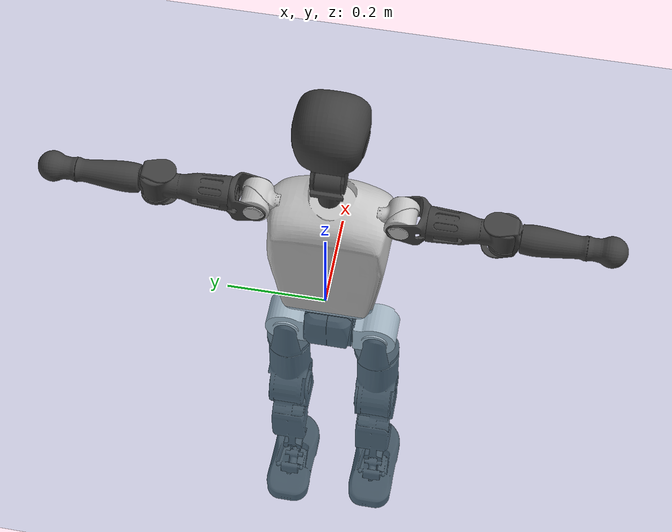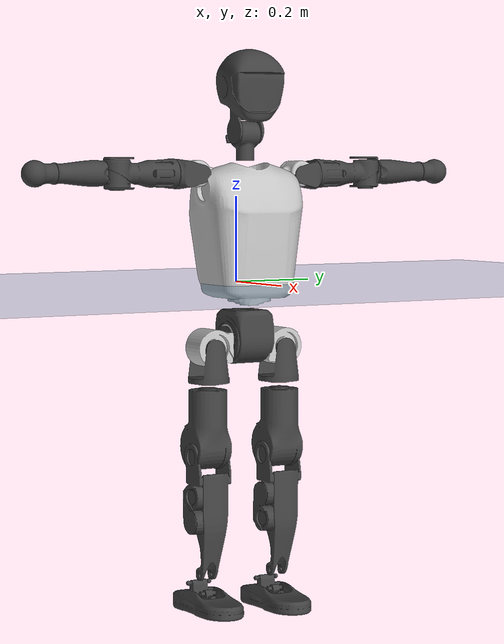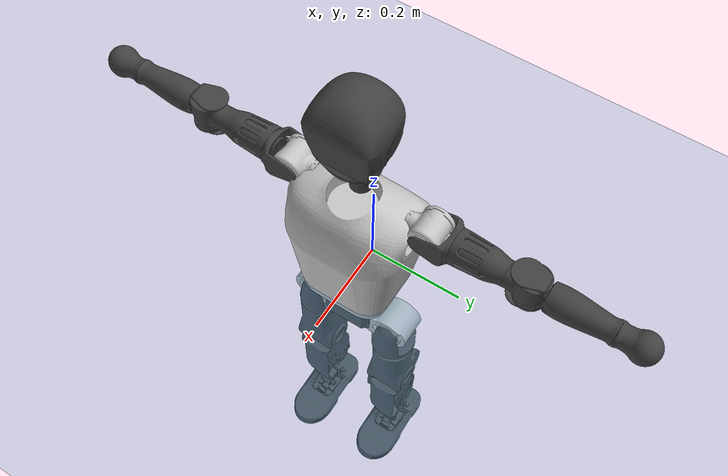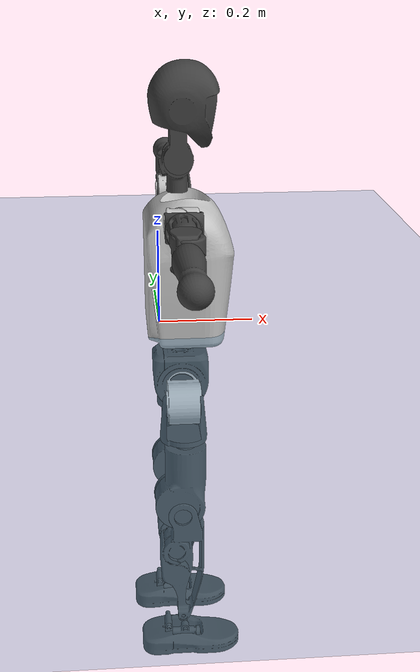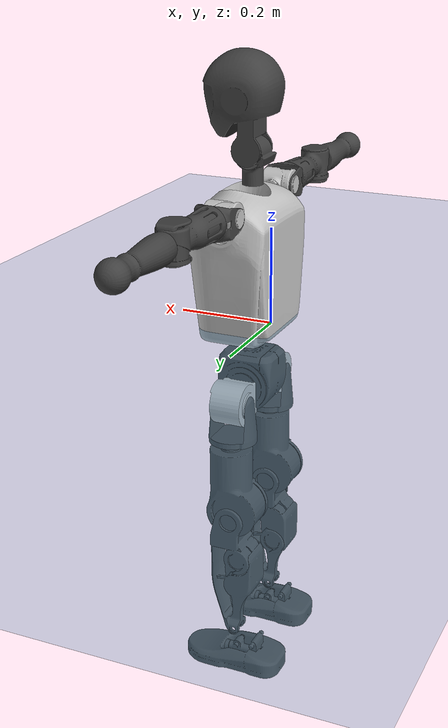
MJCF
<mujoco model="T1">
  <compiler angle="radian" assetdir="assets" balanceinertia="true" inertiafromgeom="false"/>

  <option timestep="0.005" density="1.2" viscosity="2e-05"/>

  <size nkey="1"/>

  <visual>
    <quality shadowsize="8192"/>
    <map shadowclip="0.5"/>
  </visual>

  <default>
    <default class="/">
      <joint armature="0.01" damping="0.01" frictionloss="0.1"/>
      <geom contype="0" conaffinity="0" group="1" solref="-1000 -80"/>
      <site size="0.01 0.005 0.005" group="5"/>
      <general forcelimited="true" biastype="affine" gainprm="25" biasprm="0 -25 -0.6"/>
      <default class="t1">
        <geom rgba="0.25 0.25 0.25 1"/>
        <default class="visual">
          <geom type="mesh" group="2"/>
        </default>
        <default class="collision">
          <geom group="3"/>
        </default>
        <default class="foot">
          <geom size="0.1115 0.05 0.015" type="box" condim="6" group="4" priority="1" solimp="0.015 1 0.015"/>
        </default>
        <default class="reward_collision_sphere">
          <geom group="5" rgba="1 0 0 1"/>
        </default>
      </default>
    </default>
  </default>

  <asset>
    <texture type="skybox" colorspace="auto" name="//unnamed_texture_0" builtin="gradient" rgb1="0.95 0.95 0.95" rgb2="0.95 0.95 0.95" width="100" height="600"/>
    <texture type="2d" colorspace="auto" name="texplane" builtin="checker" rgb1="0.345 0.575 0.748" rgb2="0.345 0.575 0.748" markrgb="1 1 1" width="512" height="512"/>
    <material name="MatPlane" class="/" texture="texplane" texuniform="true" texrepeat="2 2" specular="0.9"/>
    <mesh name="Trunk" class="/" file="Trunk.stl"/>
    <mesh name="H1" class="/" file="H1.stl"/>
    <mesh name="H2" class="/" file="H2.stl"/>
    <mesh name="AL1" class="/" file="AL1.stl"/>
    <mesh name="AL2" class="/" file="AL2.stl"/>
    <mesh name="AL3" class="/" file="AL3.stl"/>
    <mesh name="left_hand_link" class="/" file="left_hand_link.stl"/>
    <mesh name="AR1" class="/" file="AR1.stl"/>
    <mesh name="AR2" class="/" file="AR2.stl"/>
    <mesh name="AR3" class="/" file="AR3.stl"/>
    <mesh name="right_hand_link" class="/" file="right_hand_link.stl"/>
    <mesh name="Waist" class="/" file="Waist.stl"/>
    <mesh name="Hip_Pitch_Left" class="/" file="Hip_Pitch_Left.stl"/>
    <mesh name="Hip_Roll_Left" class="/" file="Hip_Roll_Left.stl"/>
    <mesh name="Hip_Yaw_Left" class="/" file="Hip_Yaw_Left.stl"/>
    <mesh name="Shank_Left" class="/" file="Shank_Left.stl"/>
    <mesh name="Ankle_Cross_Left" class="/" file="Ankle_Cross_Left.stl"/>
    <mesh name="left_foot_link" class="/" file="left_foot_link.stl"/>
    <mesh name="Hip_Pitch_Right" class="/" file="Hip_Pitch_Right.stl"/>
    <mesh name="Hip_Roll_Right" class="/" file="Hip_Roll_Right.stl"/>
    <mesh name="Hip_Yaw_Right" class="/" file="Hip_Yaw_Right.stl"/>
    <mesh name="Shank_Right" class="/" file="Shank_Right.stl"/>
    <mesh name="Ankle_Cross_Right" class="/" file="Ankle_Cross_Right.stl"/>
    <mesh name="right_foot_link" class="/" file="right_foot_link.stl"/>
  </asset>

  <worldbody>
    <geom name="floor" class="/" size="100 100 0.125" type="plane" group="0" material="MatPlane"/>
    <light name="toplight_shadow" class="/" pos="0 0 5" dir="0.0990148 0.0990148 -0.990148" type="directional" ambient="0.04 0.04 0.04" diffuse="0.55 0.55 0.55" specular="0.12 0.12 0.12"/>
    <light name="toplight_fill" class="/" pos="0 0 5" dir="0.0990148 0.0990148 -0.990148" type="directional" castshadow="false" ambient="0.04 0.04 0.04" diffuse="0.3 0.3 0.3" specular="0.08 0.08 0.08"/>
    <body name="trunk" childclass="t1" pos="0.00101276 -0.00278947 0.000570667" quat="1 7.32923e-05 0.000146495 -0.000535762">
      <inertial pos="0.0357164 -0.00277335 0.118789" quat="0.999963 0.000531381 -0.00716833 0.00466699" mass="8.5173" diaginertia="0.0146036 0.0399843 0.112799"/>
      <joint name="//unnamed_joint_0" type="free" armature="0" damping="0" frictionloss="0"/>
      <geom name="//unnamed_geom_1" class="visual" rgba="0.76 0.76 0.76 1" mesh="Trunk"/>
      <geom name="//unnamed_geom_2" class="collision" size="0.0684213 0.0912284 0.136843" pos="0.04174 0 0.138629" type="box"/>
      <geom name="//unnamed_geom_3" class="reward_collision_sphere" size="0.104913" pos="0.04174 0 0.115524"/>
      <geom name="//unnamed_geom_4" class="reward_collision_sphere" size="0.0136843" pos="0.04174 0.0753054 0"/>
      <geom name="//unnamed_geom_5" class="reward_collision_sphere" size="0.0136843" pos="0.04174 -0.0753054 0"/>
      <geom name="//unnamed_geom_6" class="reward_collision_sphere" size="0.0136843" pos="0.04174 0.0947962 0.207943"/>
      <geom name="//unnamed_geom_7" class="reward_collision_sphere" size="0.0136843" pos="0.04174 -0.0947962 0.207943"/>
      <site name="imu" pos="0.0131667 0.00498126 -0.0131378" size="0.00912284"/>
      <camera name="track" pos="0 -1.77189 0" quat="0.707107 0.707107 0 0" mode="trackcom"/>
      <camera name="ego_camera" pos="0.0848713 0 0.485201" quat="-0.5 -0.5 0.5 0.5"/>
      <body name="H1" pos="0.0394686 0.00237235 0.28305" quat="0.999999 -0.000898673 -0.000743125 -0.00010765">
        <inertial pos="-0.00418066 -0.000726873 0.0690021" quat="0.760332 -0.0151612 0.00419922 0.649344" mass="0.348241" diaginertia="4.07202e-05 0.00012564 0.000298557"/>
        <joint name="AAHead_yaw" pos="0 0 0" axis="0.0039372 0.00374637 0.999985" range="-1.60323 1.56831" armature="0.00783345" damping="0.0124469" frictionloss="0.0889714"/>
        <geom name="//unnamed_geom_8" class="visual" mesh="H1"/>
        <body name="H2" pos="0.00183392 0.000860787 0.0692785" quat="1 -0.000159537 -7.13009e-05 -9.29691e-05">
          <inertial pos="0.00656079 0.00226771 0.114308" quat="0.98846 0.106497 -0.0737786 -0.0784973" mass="0.487816" diaginertia="0.000342934 0.00108618 0.0035982"/>
          <joint name="Head_pitch" pos="0 0 0" axis="0.00755048 -0.999919 0.0102777" range="-1.20965 0.353691" armature="0.00865387" damping="0.00875614" frictionloss="0.0903918"/>
          <geom name="//unnamed_geom_9" class="visual" mesh="H2"/>
          <geom name="//unnamed_geom_10" class="collision" size="0.0729827" pos="0.00695666 0 0.127076"/>
          <geom name="//unnamed_geom_11" class="reward_collision_sphere" size="0.0821056" pos="0.0139133 0 0.115524"/>
        </body>
      </body>
      <body name="AL1" pos="0.0386369 0.0972797 0.252494" quat="1 1.46539e-05 0.000450409 -6.02449e-05">
        <inertial pos="-0.00158055 0.0387294 -0.00184662" quat="0.504085 0.493815 -0.507262 0.494701" mass="0.403045" diaginertia="0.000221961 0.000704726 0.000582722"/>
        <joint name="Left_Shoulder_Pitch" pos="0 0 0" axis="-0.000722553 0.99999 -0.0043692" stiffness="0.0108037" range="-3.32561 1.16604" armature="0.00892322" damping="0.00924612" frictionloss="0.0916777"/>
        <geom name="//unnamed_geom_12" class="visual" rgba="0.76 0.76 0.76 1" mesh="AL1"/>
        <body name="AL2" pos="0.00176643 0.0431845 -0.00266448" quat="1 -6.96455e-05 -3.04102e-05 -3.72016e-05">
          <inertial pos="0.00526044 0.030874 -0.0021271" quat="0.48325 0.50502 -0.492125 0.518881" mass="0.122158" diaginertia="6.61476e-05 0.000189688 0.00036594"/>
          <joint name="Left_Shoulder_Roll" pos="0 0 0" axis="-0.999918 0.00993822 -0.0081098" range="-1.55681 1.73588" armature="0.0092303" damping="0.0117645" frictionloss="0.0906192"/>
          <geom name="//unnamed_geom_13" class="visual" mesh="AL2"/>
          <body name="AL3" pos="0.000775842 0.0534328 0.00275613" quat="1 0.000465887 -4.45742e-05 8.53789e-05">
            <inertial pos="-0.00342562 0.0756807 -0.000645571" quat="0.705623 0.708578 -0.00242201 0.00286602" mass="0.769812" diaginertia="0.00215918 0.00697989 0.00127383"/>
            <joint name="Left_Elbow_Pitch" pos="0 0 0" axis="-0.00331621 -0.999994 -0.000170226" range="-2.31288 2.26446" armature="0.00914513" damping="0.00824111" frictionloss="0.0938217"/>
            <geom name="//unnamed_geom_14" class="visual" mesh="AL3"/>
            <geom name="//unnamed_geom_15" class="collision" size="0.0273685 0.0684213" pos="0 0.0442973 0" quat="0.707105 0.707108 0 0" type="cylinder"/>
            <geom name="//unnamed_geom_16" class="reward_collision_sphere" size="0.0328422"/>
            <body name="left_hand_link" pos="0.00179492 0.133284 0.00309878" quat="1 -0.00011142 -7.59263e-05 3.50099e-05">
              <inertial pos="0.00133507 0.0943983 -0.0013509" quat="0.709138 0.705001 -0.00556977 0.00806461" mass="0.248727" diaginertia="0.00133776 0.00441948 0.000456793"/>
              <joint name="Left_Elbow_Yaw" pos="0 0 0" axis="0.00569643 0.00433699 0.999974" range="-2.45563 -0.0223902" armature="0.0105227" damping="0.0244831" frictionloss="0.090532"/>
              <geom name="//unnamed_geom_17" class="visual" mesh="left_hand_link"/>
              <geom name="//unnamed_geom_18" class="collision" size="0.0273685 0.0798249" pos="0 0.115173 0" quat="0.707105 0.707108 0 0" type="cylinder"/>
              <geom name="//unnamed_geom_19" class="reward_collision_sphere" size="0.0456142"/>
              <geom name="//unnamed_geom_20" class="reward_collision_sphere" size="0.03193" pos="0 0.0974541 0"/>
              <geom name="//unnamed_geom_21" class="reward_collision_sphere" size="0.03193" pos="0 0.190478 0"/>
            </body>
          </body>
        </body>
      </body>
      <body name="AR1" pos="0.0412518 -0.0900175 0.25421" quat="1 6.43e-05 0.000406424 -0.000106597">
        <inertial pos="-0.00125743 -0.042744 0.00265694" quat="0.506341 0.49488 -0.50389 0.49478" mass="0.407432" diaginertia="0.000218389 0.000722241 0.000602723"/>
        <joint name="Right_Shoulder_Pitch" pos="0 0 0" axis="0.00210277 -0.999967 0.00789294" range="-1.17021 3.31531" armature="0.00817689" damping="0.021166" frictionloss="0.0791277"/>
        <geom name="//unnamed_geom_22" class="visual" rgba="0.76 0.76 0.76 1" mesh="AR1"/>
        <body name="AR2" pos="0.000664426 -0.0420952 -0.00110343" quat="0.999999 0.000670318 0.000795956 -0.000390392">
          <inertial pos="5.27793e-05 -0.0316116 -0.000508118" quat="0.521278 0.48066 -0.506981 0.490108" mass="0.117793" diaginertia="6.3194e-05 0.000188729 0.000350323"/>
          <joint name="Right_Shoulder_Roll" pos="0 0 0" axis="-0.999995 0.00305394 0.000971346" range="-1.79258 1.5178" armature="0.00907564" damping="0" frictionloss="0.0928107"/>
          <geom name="//unnamed_geom_23" class="visual" mesh="AR2"/>
          <body name="AR3" pos="-0.00342432 -0.0541104 0.00120954" quat="1 1.47309e-05 -0.000617013 -0.000551385">
            <inertial pos="-0.000407758 -0.0767475 0.00288151" quat="0.706762 0.707449 -0.000547417 -0.00179366" mass="0.76904" diaginertia="0.002106 0.00672906 0.00122954"/>
            <joint name="Right_Elbow_Pitch" pos="0 0 0" axis="0.00666005 0.999904 -0.0121147" range="-2.31744 2.27835" armature="0.00873839" damping="0.013645" frictionloss="0.103883"/>
            <geom name="//unnamed_geom_24" class="visual" mesh="AR3"/>
            <geom name="//unnamed_geom_25" class="collision" size="0.0273685 0.0684213" pos="0 -0.0442973 0" quat="0.707105 0.707108 0 0" type="cylinder"/>
            <geom name="//unnamed_geom_26" class="reward_collision_sphere" size="0.0328422"/>
            <body name="right_hand_link" pos="-0.00393967 -0.133032 0.00130142" quat="0.999999 -0.000227841 0.000143644 0.00104169">
              <inertial pos="0.00018354 -0.0947019 -0.000782026" quat="0.705513 0.708697 -3.48781e-05 0.000306047" mass="0.253453" diaginertia="0.00133262 0.0042795 0.000447608"/>
              <joint name="Right_Elbow_Yaw" pos="0 0 0" axis="0.00367468 -0.00219053 0.999991" range="-0.0113196 2.40421" armature="0.00818572" damping="0.0134004" frictionloss="0.0934374"/>
              <geom name="//unnamed_geom_27" class="visual" mesh="right_hand_link"/>
              <geom name="//unnamed_geom_28" class="collision" size="0.0273685 0.0798249" pos="0 -0.115173 0" quat="0.707105 0.707108 0 0" type="cylinder"/>
              <geom name="//unnamed_geom_29" class="reward_collision_sphere" size="0.0456142"/>
              <geom name="//unnamed_geom_30" class="reward_collision_sphere" size="0.03193" pos="0 -0.0974541 0"/>
              <geom name="//unnamed_geom_31" class="reward_collision_sphere" size="0.03193" pos="0 -0.190478 0"/>
            </body>
          </body>
        </body>
      </body>
      <body name="Waist" pos="0.0428005 -0.00114678 -0.13031" quat="1 -0.000429561 0.000117082 0.000325719">
        <inertial pos="0.00354713 0.00179271 0.00867882" quat="0.984604 0.00169349 -0.174253 0.0137222" mass="1.84355" diaginertia="0.00082574 0.00269255 0.0091383"/>
        <joint name="Waist" pos="0 0 0" axis="-0.00309068 0.0103397 0.999942" range="-1.6241 1.51974" armature="0.00862441" damping="0.00813536" frictionloss="0.104119"/>
        <geom name="//unnamed_geom_32" class="visual" mesh="Waist"/>
        <body name="Hip_Pitch_Left" pos="0.00395799 0.0913714 -0.00111206" quat="1 -0.000549621 -0.000457177 -0.000697025">
          <inertial pos="-0.00158706 -0.00726115 -0.0224861" quat="0.976604 0.213928 0.0218313 -0.00179599" mass="0.740759" diaginertia="0.000283516 0.000770306 0.00249796"/>
          <joint name="Left_Hip_Pitch" pos="0 0 0" axis="-0.0167888 0.999858 -0.0017261" stiffness="0.0201906" range="-1.79191 1.60669" armature="0.00845619" damping="0" frictionloss="0.0882838"/>
          <geom name="//unnamed_geom_33" class="visual" rgba="0.76 0.76 0.76 1" mesh="Hip_Pitch_Left"/>
          <body name="Hip_Roll_Left" pos="0.00117586 0.000286468 -0.0258314" quat="1 0.000421212 -7.11567e-05 -8.48003e-05">
            <inertial pos="0.000606947 0.000733856 -0.0640023" quat="0.707172 -0.00784689 -0.00583759 0.706973" mass="0.297588" diaginertia="0.00029643 0.000829367 0.00107122"/>
            <joint name="Left_Hip_Roll" pos="0 0 0" axis="-0.999877 0.0104417 0.0116683" range="-1.61899 0.223675" armature="0.0090843" damping="0.020295" frictionloss="0.0887443"/>
            <geom name="//unnamed_geom_34" class="visual" mesh="Hip_Roll_Left"/>
            <geom name="//unnamed_geom_35" class="reward_collision_sphere" size="0.0501756"/>
            <body name="Hip_Yaw_Left" pos="0.00137876 0.000825505 -0.0961427" quat="1 -3.03092e-05 7.57203e-05 -0.000323452">
              <inertial pos="-0.00736157 -0.000802165 -0.101119" quat="0.701274 -0.0282846 -0.0348582 0.711477" mass="1.65432" diaginertia="0.00444932 0.0141729 0.00571146"/>
              <joint name="Left_Hip_Yaw" pos="0 0 0" axis="-0.000927173 -0.00200971 -0.999998" stiffness="0.00424142" range="-1.01391 1.00107" armature="0.010533" damping="0.0140187" frictionloss="0.0930411"/>
              <geom name="//unnamed_geom_36" class="visual" mesh="Hip_Yaw_Left"/>
              <geom name="//unnamed_geom_37" class="collision" size="0.0456142 0.0729827" type="cylinder"/>
              <body name="Shank_Left" pos="-0.00915661 -0.00163576 -0.156045" quat="0.999999 -0.000834249 -0.000603861 -0.00073803">
                <inertial pos="-0.00478295 0.000593671 -0.145584" quat="0.997546 0.00435318 -0.0220847 0.0663035" mass="1.28949" diaginertia="0.00557793 0.0177911 0.00356741"/>
                <joint name="Left_Knee_Pitch" pos="0 0 0" axis="0.00279384 0.999996 0.000509806" stiffness="0.000192036" range="0.0568672 2.35343" armature="0.00876858" damping="0" frictionloss="0.083321"/>
                <geom name="//unnamed_geom_38" class="visual" mesh="Shank_Left"/>
                <geom name="//unnamed_geom_39" class="collision" size="0.0456142 0.0684213" pos="0 0 -0.138629" type="cylinder"/>
                <geom name="//unnamed_geom_40" class="reward_collision_sphere" size="0.0592985"/>
                <body name="Ankle_Cross_Left" pos="-0.00349288 -0.00258152 -0.325666" quat="1 0.000353797 -0.00017043 0.000577172">
                  <inertial pos="-0.00356432 0.00114074 -0.0089978" quat="0.441682 0.551378 0.552168 0.442729" mass="0.0540123" diaginertia="4.91695e-06 1.39455e-05 2.32335e-05"/>
                  <joint name="Left_Ankle_Pitch" pos="0 0 0" axis="0.000401846 0.999951 -0.0098805" stiffness="0.012092" range="-0.926104 0.369881" armature="0.00836291" damping="0.0214955" frictionloss="0.104133"/>
                  <geom name="//unnamed_geom_41" class="visual" mesh="Ankle_Cross_Left"/>
                  <body name="left_foot_link" pos="-0.00236019 0.00252214 -0.0134349" quat="1 0.000190312 9.45854e-05 -0.000141771">
                    <inertial pos="-0.00124991 -0.000480327 -0.0128101" quat="-0.00933495 0.614761 0.00742942 0.788623" mass="0.508187" diaginertia="0.000460749 0.00133453 0.00467841"/>
                    <joint name="Left_Ankle_Roll" pos="0 0 0" axis="-1 5.81886e-05 -0.000216538" range="-0.469903 0.420193" armature="0.0105473" damping="0.0154627" frictionloss="0.0856254"/>
                    <geom name="//unnamed_geom_42" class="visual" mesh="left_foot_link"/>
                    <geom name="left_foot" class="foot" size="0.10566 0.0410021 0.0139781" pos="0.00695666 0 -0.0173286"/>
                    <geom name="//unnamed_geom_44" class="reward_collision_sphere" size="0.0474388" pos="0.00695666 0 -0.0173286"/>
                    <geom name="//unnamed_geom_45" class="reward_collision_sphere" size="0.0273685" pos="0.0660883 -0.0203768 -0.0173286"/>
                    <geom name="//unnamed_geom_46" class="reward_collision_sphere" size="0.0273685" pos="-0.0486966 -0.0203768 -0.0173286"/>
                    <site name="left_foot" class="foot" pos="0.00695666 0 -0.0173286" size="0.00912284"/>
                  </body>
                </body>
              </body>
            </body>
          </body>
        </body>
        <body name="Hip_Pitch_Right" pos="0.00173795 -0.096393 0.000700083" quat="1 -0.000257082 -0.000587001 0.000318514">
          <inertial pos="0.00260716 0.0043058 -0.017793" quat="0.973363 -0.22875 0.0152989 -0.00176325" mass="0.777329" diaginertia="0.000292721 0.000836614 0.00261743"/>
          <joint name="Right_Hip_Pitch" pos="0 0 0" axis="0.00149317 -0.99999 -0.00419791" range="-1.61533 1.79114" armature="0.0104685" damping="0.00917506" frictionloss="0.0795225"/>
          <geom name="//unnamed_geom_47" class="visual" rgba="0.76 0.76 0.76 1" mesh="Hip_Pitch_Right"/>
          <body name="Hip_Roll_Right" pos="0.000649385 -0.0014659 -0.0243856" quat="1 3.90705e-05 -0.000107274 -0.000138922">
            <inertial pos="0.00296151 0.00209981 -0.0593726" quat="0.708806 -0.00669904 -0.0104234 0.705294" mass="0.306731" diaginertia="0.000293238 0.000882427 0.00110093"/>
            <joint name="Right_Hip_Roll" pos="0 0 0" axis="-0.99985 0.00579106 0.016342" range="-0.201397 1.56468" armature="0.00918238" damping="0.00412182" frictionloss="0.0876866"/>
            <geom name="//unnamed_geom_48" class="visual" mesh="Hip_Roll_Right"/>
            <geom name="//unnamed_geom_49" class="reward_collision_sphere" size="0.0501756"/>
            <body name="Hip_Yaw_Right" pos="0.00106681 -0.00352463 -0.0928257" quat="0.999999 -0.00074447 -0.000444178 0.000530109">
              <inertial pos="-0.00461929 -0.00330822 -0.100544" quat="0.714645 -0.0316187 -0.0339912 0.697945" mass="1.69885" diaginertia="0.00417605 0.0143145 0.00530205"/>
              <joint name="Right_Hip_Yaw" pos="0 0 0" axis="-0.000211538 0.000877155 -1" stiffness="0.0102815" range="-0.985514 1.02522" armature="0.00795898" damping="0.00955622" frictionloss="0.0874438"/>
              <geom name="//unnamed_geom_50" class="visual" mesh="Hip_Yaw_Right"/>
              <geom name="//unnamed_geom_51" class="collision" size="0.0456142 0.0729827" type="cylinder"/>
              <body name="Shank_Right" pos="-0.00880458 0.00172604 -0.156773" quat="0.999999 -0.000918847 -0.000755128 -0.00091358">
                <inertial pos="-0.00161387 -0.00139777 -0.141095" quat="0.999192 0.00371661 -0.0235899 -0.0323309" mass="1.27362" diaginertia="0.00570943 0.0184658 0.0040578"/>
                <joint name="Right_Knee_Pitch" pos="0 0 0" axis="-0.00105226 -0.999998 -0.0019412" stiffness="0.000137998" range="-2.34934 0.0526587" armature="0.00914759" damping="0.0138499" frictionloss="0.095879"/>
                <geom name="//unnamed_geom_52" class="visual" mesh="Shank_Right"/>
                <geom name="//unnamed_geom_53" class="collision" size="0.0456142 0.0684213" pos="0 0 -0.138629" type="cylinder"/>
                <geom name="//unnamed_geom_54" class="reward_collision_sphere" size="0.0592985"/>
                <body name="Ankle_Cross_Right" pos="0.00448627 0.00112999 -0.323593" quat="1 -0.000493392 -7.82203e-05 -0.000685143">
                  <inertial pos="-0.00182701 0.00237778 -0.00816464" quat="0.443005 0.551719 0.550426 0.443152" mass="0.0559002" diaginertia="4.75757e-06 1.3986e-05 2.26932e-05"/>
                  <joint name="Right_Ankle_Pitch" pos="0 0 0" axis="-0.00325122 -0.999925 0.0118311" stiffness="0.010089" range="-0.344736 0.888028" armature="0.0085955" damping="0.0132688" frictionloss="0.091211"/>
                  <geom name="//unnamed_geom_55" class="visual" mesh="Ankle_Cross_Right"/>
                  <body name="right_foot_link" pos="0.00292573 -0.00293512 -0.011881" quat="1 -0.000149126 0.000177358 -0.00040547">
                    <inertial pos="-5.61268e-05 0.00212999 -0.0101413" quat="-0.0097051 0.627254 -0.00531881 0.778736" mass="0.531204" diaginertia="0.000443725 0.00134098 0.00473701"/>
                    <joint name="Right_Ankle_Roll" pos="0 0 0" axis="-0.999985 0.00456572 -0.00307521" range="-0.446982 0.382625" armature="0.00880634" damping="0.0114357" frictionloss="0.0888659"/>
                    <geom name="//unnamed_geom_56" class="visual" mesh="right_foot_link"/>
                    <geom name="right_foot" class="foot" size="0.0966049 0.0494232 0.0138626" pos="0.00695666 0 -0.0173286"/>
                    <geom name="//unnamed_geom_58" class="reward_collision_sphere" size="0.0364914"/>
                    <geom name="//unnamed_geom_59" class="reward_collision_sphere" size="0.0273685" pos="0.00695666 0 -0.0173286"/>
                    <geom name="//unnamed_geom_60" class="reward_collision_sphere" size="0.0273685" pos="0.0660883 0.0203768 -0.0173286"/>
                    <geom name="//unnamed_geom_61" class="reward_collision_sphere" size="0.0273685" pos="-0.0486966 0.0203768 -0.0173286"/>
                    <site name="right_foot" class="foot" pos="0.00695666 0 -0.0173286" size="0.00912284"/>
                  </body>
                </body>
              </body>
            </body>
          </body>
        </body>
      </body>
    </body>
  </worldbody>

  <contact>
    <pair class="/" geom1="floor" geom2="left_foot" name="//unnamed_contact_0"/>
    <pair class="/" geom1="floor" geom2="right_foot" name="//unnamed_contact_1"/>
  </contact>

  <actuator>
    <general name="AAHead_yaw" class="/" joint="AAHead_yaw" forcerange="-5.94604 5.94604" gainprm="22.5556" biasprm="0 -22.5556 -0.579572"/>
    <general name="Head_pitch" class="/" joint="Head_pitch" forcerange="-6.84102 6.84102" gainprm="22.5556" biasprm="0 -22.5556 -0.579572"/>
    <general name="Left_Shoulder_Pitch" class="/" joint="Left_Shoulder_Pitch" forcerange="-16.5661 16.5661" gainprm="22.5556" biasprm="0 -22.5556 -0.579572"/>
    <general name="Left_Shoulder_Roll" class="/" joint="Left_Shoulder_Roll" forcerange="-16.237 16.237" gainprm="22.5556" biasprm="0 -22.5556 -0.579572"/>
    <general name="Left_Elbow_Pitch" class="/" joint="Left_Elbow_Pitch" forcerange="-14.7884 14.7884" gainprm="22.5556" biasprm="0 -22.5556 -0.579572"/>
    <general name="Left_Elbow_Yaw" class="/" joint="Left_Elbow_Yaw" forcerange="-16.7495 16.7495" gainprm="22.5556" biasprm="0 -22.5556 -0.579572"/>
    <general name="Right_Shoulder_Pitch" class="/" joint="Right_Shoulder_Pitch" forcerange="-16.1736 16.1736" gainprm="22.5556" biasprm="0 -22.5556 -0.579572"/>
    <general name="Right_Shoulder_Roll" class="/" joint="Right_Shoulder_Roll" forcerange="-15.8959 15.8959" gainprm="22.5556" biasprm="0 -22.5556 -0.579572"/>
    <general name="Right_Elbow_Pitch" class="/" joint="Right_Elbow_Pitch" forcerange="-14.7149 14.7149" gainprm="22.5556" biasprm="0 -22.5556 -0.579572"/>
    <general name="Right_Elbow_Yaw" class="/" joint="Right_Elbow_Yaw" forcerange="-14.6485 14.6485" gainprm="22.5556" biasprm="0 -22.5556 -0.579572"/>
    <general name="Waist" class="/" joint="Waist" forcerange="-24.6317 24.6317" gainprm="22.5556" biasprm="0 -22.5556 -0.579572"/>
    <general name="Left_Hip_Pitch" class="/" joint="Left_Hip_Pitch" forcerange="-42.3707 42.3707" gainprm="22.5556" biasprm="0 -22.5556 -0.579572"/>
    <general name="Left_Hip_Roll" class="/" joint="Left_Hip_Roll" forcerange="-24.5153 24.5153" gainprm="22.5556" biasprm="0 -22.5556 -0.579572"/>
    <general name="Left_Hip_Yaw" class="/" joint="Left_Hip_Yaw" forcerange="-24.5361 24.5361" gainprm="22.5556" biasprm="0 -22.5556 -0.579572"/>
    <general name="Left_Knee_Pitch" class="/" joint="Left_Knee_Pitch" forcerange="-59.3095 59.3095" gainprm="22.5556" biasprm="0 -22.5556 -0.579572"/>
    <general name="Left_Ankle_Pitch" class="/" joint="Left_Ankle_Pitch" forcerange="-18.7723 18.7723" gainprm="22.5556" biasprm="0 -22.5556 -0.579572"/>
    <general name="Left_Ankle_Roll" class="/" joint="Left_Ankle_Roll" forcerange="-12.912 12.912" gainprm="22.5556" biasprm="0 -22.5556 -0.579572"/>
    <general name="Right_Hip_Pitch" class="/" joint="Right_Hip_Pitch" forcerange="-39.4575 39.4575" gainprm="22.5556" biasprm="0 -22.5556 -0.579572"/>
    <general name="Right_Hip_Roll" class="/" joint="Right_Hip_Roll" forcerange="-28.8436 28.8436" gainprm="22.5556" biasprm="0 -22.5556 -0.579572"/>
    <general name="Right_Hip_Yaw" class="/" joint="Right_Hip_Yaw" forcerange="-24.908 24.908" gainprm="22.5556" biasprm="0 -22.5556 -0.579572"/>
    <general name="Right_Knee_Pitch" class="/" joint="Right_Knee_Pitch" forcerange="-49.0968 49.0968" gainprm="22.5556" biasprm="0 -22.5556 -0.579572"/>
    <general name="Right_Ankle_Pitch" class="/" joint="Right_Ankle_Pitch" forcerange="-18.9859 18.9859" gainprm="22.5556" biasprm="0 -22.5556 -0.579572"/>
    <general name="Right_Ankle_Roll" class="/" joint="Right_Ankle_Roll" forcerange="-14.7106 14.7106" gainprm="22.5556" biasprm="0 -22.5556 -0.579572"/>
  </actuator>

  <sensor>
    <gyro site="imu" name="imu_angular_velocity"/>
    <velocimeter site="imu" name="imu_linear_velocity"/>
    <framelinvel objtype="site" objname="left_foot" name="left_foot_global_linear_velocity"/>
    <framelinvel objtype="site" objname="right_foot" name="right_foot_global_linear_velocity"/>
  </sensor>

  <keyframe>
    <key name="home" qpos="0 0 0.6385 1 0 0 0 0 0 0 1.4 0 -0.4 0 -1.4 0 0.4 0 -0.4 0 0 0.8 -0.4 0 0.4 0 0 -0.8 0.4 0"/>
  </keyframe>
</mujoco>
